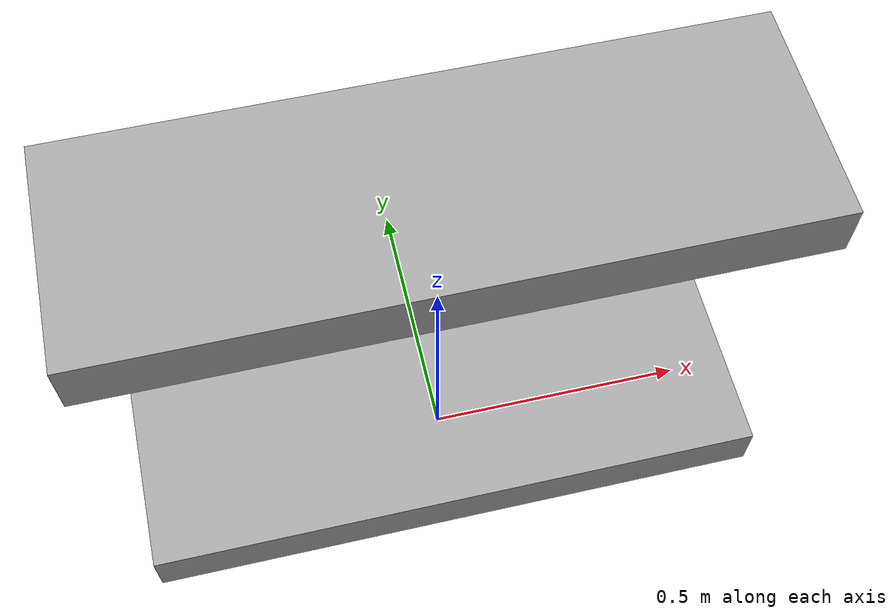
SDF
<!-- ~/TiagoShopAssistant/src/tiago/tiago/models/shelf.sdf -->
<sdf version='1.7'>
  <model name='simple_shelf'>
    <static>true</static>
    <link name='link'>
      <!-- Base dello scaffale -->
      <visual name='visual_base'>
        <geometry><box><size>1.2 0.4 0.1</size></box></geometry>
        <material><ambient>0.5 0.5 0.5 1</ambient><diffuse>0.7 0.7 0.7 1</diffuse></material>
      </visual>
      <collision name='collision_base'>
        <geometry><box><size>1.2 0.4 0.1</size></box></geometry>
      </collision>
      <!-- Ripiano superiore -->
      <visual name='visual_top'>
        <pose>0 0 0.8 0 0 0</pose>
        <geometry><box><size>1.2 0.4 0.1</size></box></geometry>
        <material><ambient>0.5 0.5 0.5 1</ambient><diffuse>0.7 0.7 0.7 1</diffuse></material>
      </visual>
      <collision name='collision_top'>
        <pose>0 0 0.8 0 0 0</pose>
        <geometry><box><size>1.2 0.4 0.1</size></box></geometry>
      </collision>
      <!-- Gambe di supporto (invisibili per semplicità, ma con collisione) -->
      <collision name='leg1'><pose>0.55 0.15 0.45 0 0 0</pose><geometry><box><size>0.1 0.1 0.8</size></box></geometry></collision>
      <collision name='leg2'><pose>-0.55 0.15 0.45 0 0 0</pose><geometry><box><size>0.1 0.1 0.8</size></box></geometry></collision>
      <collision name='leg3'><pose>0.55 -0.15 0.45 0 0 0</pose><geometry><box><size>0.1 0.1 0.8</size></box></geometry></collision>
      <collision name='leg4'><pose>-0.55 -0.15 0.45 0 0 0</pose><geometry><box><size>0.1 0.1 0.8</size></box></geometry></collision>
    </link>
  </model>
</sdf>
